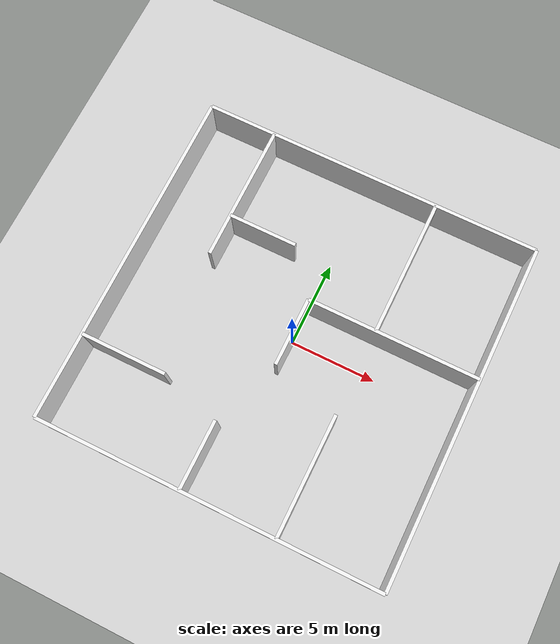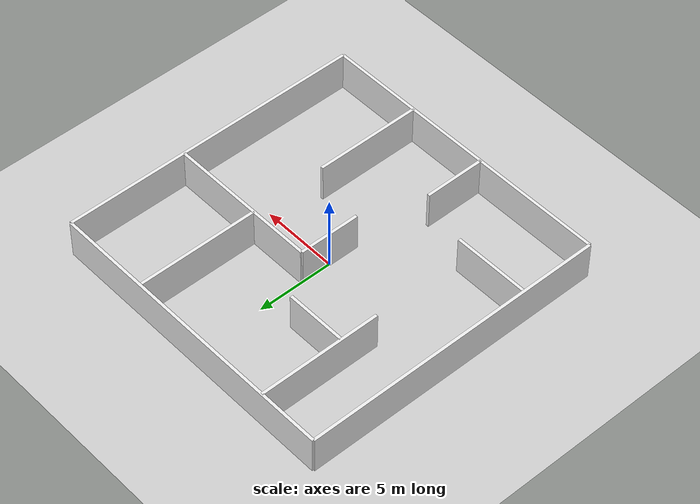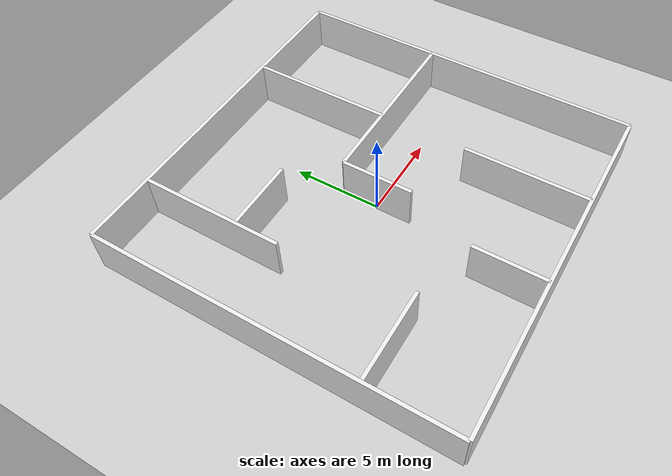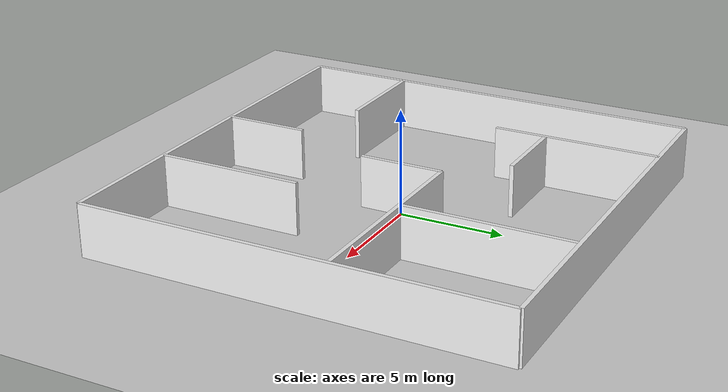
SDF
<?xml version="1.0" encoding="UTF-8"?>
<sdf version="1.4">
  <world name="default">
    <!-- *********************INITIAL POSE OF THE CAMERA***************************** -->
		<gui>
      <camera name="main_cam">
        <pose>1.3 -6.86 41.44 0 1.4 1.57</pose>
      </camera>
    </gui>

    <!-- *********************GROUND AND SUN***************************** -->
    <include>
      <uri>model://ground_plane</uri>
    </include>

    <include>
      <uri>model://sun</uri>
    </include>

    <!-- **********************WALLS**************************** -->
    <include>
      <uri>model://in425_walls</uri>
      <name>walls</name>
      <pose>0 0 0 0 0 0</pose>
    </include>
  </world>
</sdf>

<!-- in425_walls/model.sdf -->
<sdf version='1.7'>
  <model name='walls'>
    <static>true</static>
    <link name='Wall_0'>
      <collision name='Wall_0_Collision'>
        <geometry>
          <box>
            <size>20 0.2 2.5</size>
          </box>
        </geometry>
        <pose>0 0 1.25 0 0 0</pose>
      </collision>
      <visual name='Wall_0_Visual'>
        <pose>0 0 1.25 0 0 0</pose>
        <geometry>
          <box>
            <size>20 0.2 2.5</size>
          </box>
        </geometry>
        <material>
          <script>
            <uri>file://media/materials/scripts/gazebo.material</uri>
            <name>Gazebo/White</name>
          </script>
        </material>
      </visual>
      <pose>0 10 0 0 0 0</pose>
    </link>

    <link name='Wall_1'>
      <collision name='Wall_1_Collision'>
        <geometry>
          <box>
            <size>20 0.2 2.5</size>
          </box>
        </geometry>
        <pose>0 0 1.25 0 0 0</pose>
      </collision>
      <visual name='Wall_1_Visual'>
        <pose>0 0 1.25 0 0 0</pose>
        <geometry>
          <box>
            <size>20 0.2 2.5</size>
          </box>
        </geometry>
        <material>
          <script>
            <uri>file://media/materials/scripts/gazebo.material</uri>
            <name>Gazebo/White</name>
          </script>
        </material>
      </visual>
      <pose>0 -10 0 0 0 0</pose>
    </link>

    <link name='Wall_2'>
      <collision name='Wall_2_Collision'>
        <geometry>
          <box>
            <size>20 0.2 2.5</size>
          </box>
        </geometry>
        <pose>0 0 1.25 0 0 0</pose>
      </collision>
      <visual name='Wall_2_Visual'>
        <pose>0 0 1.25 0 0 0</pose>
        <geometry>
          <box>
            <size>20 0.2 2.5</size>
          </box>
        </geometry>
        <material>
          <script>
            <uri>file://media/materials/scripts/gazebo.material</uri>
            <name>Gazebo/White</name>
          </script>
        </material>
      </visual>
      <pose>10 0 0 0 0 1.57</pose>
    </link>

    <link name='Wall_3'>
      <collision name='Wall_3_Collision'>
        <geometry>
          <box>
            <size>20 0.2 2.5</size>
          </box>
        </geometry>
        <pose>0 0 1.25 0 0 0</pose>
      </collision>
      <visual name='Wall_3_Visual'>
        <pose>0 0 1.25 0 0 0</pose>
        <geometry>
          <box>
            <size>20 0.2 2.5</size>
          </box>
        </geometry>
        <material>
          <script>
            <uri>file://media/materials/scripts/gazebo.material</uri>
            <name>Gazebo/White</name>
          </script>
        </material>
      </visual>
      <pose>-10 0 0 0 0 1.57</pose>
    </link>

    <link name='Wall_4'>
      <collision name='Wall_4_Collision'>
        <geometry>
          <box>
            <size>5 0.2 2.5</size>
          </box>
        </geometry>
        <pose>0 0 1.25 0 0 0</pose>
      </collision>
      <visual name='Wall_4_Visual'>
        <pose>0 0 1.25 0 0 0</pose>
        <geometry>
          <box>
            <size>5 0.2 2.5</size>
          </box>
        </geometry>
        <material>
          <script>
            <uri>file://media/materials/scripts/gazebo.material</uri>
            <name>Gazebo/White</name>
          </script>
        </material>
      </visual>
      <pose>-7.5 -5 0 0 0 0</pose>
    </link>

    <link name='Wall_5'>
      <collision name='Wall_5_Collision'>
        <geometry>
          <box>
            <size>10 0.2 2.5</size>
          </box>
        </geometry>
        <pose>0 0 1.25 0 0 0</pose>
      </collision>
      <visual name='Wall_5_Visual'>
        <pose>0 0 1.25 0 0 0</pose>
        <geometry>
          <box>
            <size>10 0.2 2.5</size>
          </box>
        </geometry>
        <material>
          <script>
            <uri>file://media/materials/scripts/gazebo.material</uri>
            <name>Gazebo/White</name>
          </script>
        </material>
      </visual>
      <pose>5 2 0 0 0 0</pose>
    </link>

    <link name='Wall_6'>
      <collision name='Wall_6_Collision'>
        <geometry>
          <box>
            <size>8 0.2 2.5</size>
          </box>
        </geometry>
        <pose>0 0 1.25 0 0 0</pose>
      </collision>
      <visual name='Wall_6_Visual'>
        <pose>0 0 1.25 0 0 0</pose>
        <geometry>
          <box>
            <size>8 0.2 2.5</size>
          </box>
        </geometry>
        <material>
          <script>
            <uri>file://media/materials/scripts/gazebo.material</uri>
            <name>Gazebo/White</name>
          </script>
        </material>
      </visual>
      <pose>-6 6 0 0 0 1.57</pose>
    </link>

    <link name='Wall_7'>
      <collision name='Wall_7_Collision'>
        <geometry>
          <box>
            <size>7 0.2 2.5</size>
          </box>
        </geometry>
        <pose>0 0 1.25 0 0 0</pose>
      </collision>
      <visual name='Wall_7_Visual'>
        <pose>0 0 1.25 0 0 0</pose>
        <geometry>
          <box>
            <size>7 0.2 2.5</size>
          </box>
        </geometry>
        <material>
          <script>
            <uri>file://media/materials/scripts/gazebo.material</uri>
            <name>Gazebo/White</name>
          </script>
        </material>
      </visual>
      <pose>4 -6.5 0 0 0 1.57</pose>
    </link>

    <link name='Wall_8'>
      <collision name='Wall_8_Collision'>
        <geometry>
          <box>
            <size>4 0.2 2.5</size>
          </box>
        </geometry>
        <pose>0 0 1.25 0 0 0</pose>
      </collision>
      <visual name='Wall_8_Visual'>
        <pose>0 0 1.25 0 0 0</pose>
        <geometry>
          <box>
            <size>4 0.2 2.5</size>
          </box>
        </geometry>
        <material>
          <script>
            <uri>file://media/materials/scripts/gazebo.material</uri>
            <name>Gazebo/White</name>
          </script>
        </material>
      </visual>
      <pose>0 0 0 0 0 1.57</pose>
    </link>

    <link name='Wall_9'>
      <collision name='Wall_9_Collision'>
        <geometry>
          <box>
            <size>4 0.2 2.5</size>
          </box>
        </geometry>
        <pose>0 0 1.25 0 0 0</pose>
      </collision>
      <visual name='Wall_9_Visual'>
        <pose>0 0 1.25 0 0 0</pose>
        <geometry>
          <box>
            <size>4 0.2 2.5</size>
          </box>
        </geometry>
        <material>
          <script>
            <uri>file://media/materials/scripts/gazebo.material</uri>
            <name>Gazebo/White</name>
          </script>
        </material>
      </visual>
      <pose>-1.5 -8 0 0 0 1.57</pose>
    </link>

    <link name='Wall_10'>
      <collision name='Wall_10_Collision'>
        <geometry>
          <box>
            <size>8 0.2 2.5</size>
          </box>
        </geometry>
        <pose>0 0 1.25 0 0 0</pose>
      </collision>
      <visual name='Wall_10_Visual'>
        <pose>0 0 1.25 0 0 0</pose>
        <geometry>
          <box>
            <size>8 0.2 2.5</size>
          </box>
        </geometry>
        <material>
          <script>
            <uri>file://media/materials/scripts/gazebo.material</uri>
            <name>Gazebo/White</name>
          </script>
        </material>
      </visual>
      <pose>4 6 0 0 0 1.57</pose>
    </link>

    <link name='Wall_11'>
      <collision name='Wall_11_Collision'>
        <geometry>
          <box>
            <size>4 0.2 2.5</size>
          </box>
        </geometry>
        <pose>0 0 1.25 0 0 0</pose>
      </collision>
      <visual name='Wall_11_Visual'>
        <pose>0 0 1.25 0 0 0</pose>
        <geometry>
          <box>
            <size>4 0.2 2.5</size>
          </box>
        </geometry>
        <material>
          <script>
            <uri>file://media/materials/scripts/gazebo.material</uri>
            <name>Gazebo/White</name>
          </script>
        </material>
      </visual>
      <pose>-4 4.5 0 0 0 0</pose>
    </link>
  </model>
</sdf>
